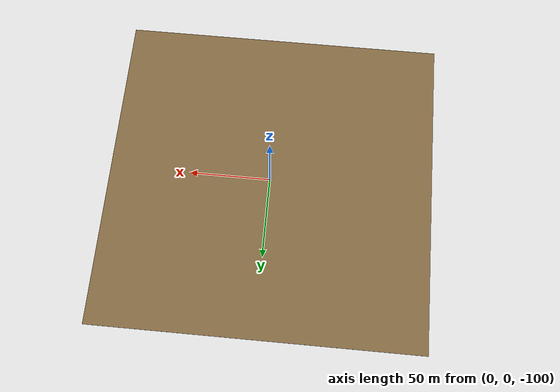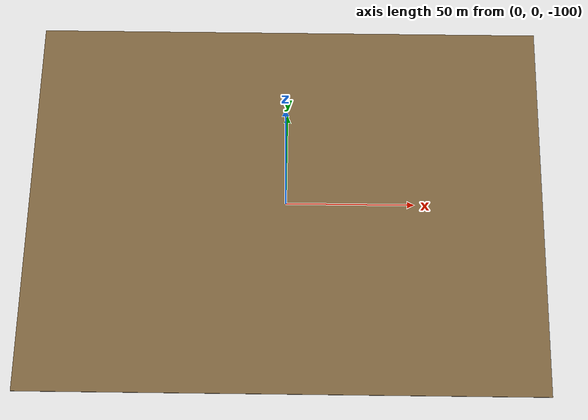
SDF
<?xml version="1.0" ?>
<sdf version="1.9">
  <world name="empty_underwater">

    <physics name="1ms" type="dart">
      <max_step_size>0.001</max_step_size>
      <real_time_factor>1.0</real_time_factor>
    </physics>

    <gravity>0 0 0</gravity>

    <scene>
      <ambient>0.1 0.15 0.3 1.0</ambient>
      <background>0.0 0.05 0.15 1.0</background>
    </scene>

    <light type="directional" name="sun">
      <cast_shadows>true</cast_shadows>
      <pose>0 0 10 0 0 0</pose>
      <diffuse>0.3 0.4 0.5 1</diffuse>
      <specular>0.1 0.1 0.1 1</specular>
      <direction>-0.5 0.1 -0.9</direction>
    </light>

    <!-- Seabed -->
    <model name="seabed">
      <static>true</static>
      <pose>0 0 -100 0 0 0</pose>
      <link name="link">
        <visual name="visual">
          <geometry>
            <box><size>200 200 0.1</size></box>
          </geometry>
          <material>
            <ambient>0.3 0.25 0.15 1</ambient>
            <diffuse>0.5 0.4 0.25 1</diffuse>
          </material>
        </visual>
        <collision name="collision">
          <geometry>
            <box><size>200 200 0.1</size></box>
          </geometry>
        </collision>
      </link>
    </model>

    <!-- ── World Plugins ──────────────────────────────────────────── -->
    <plugin filename="gz-sim-physics-system"
            name="gz::sim::systems::Physics"/>
    <plugin filename="gz-sim-user-commands-system"
            name="gz::sim::systems::UserCommands"/>
    <plugin filename="gz-sim-scene-broadcaster-system"
            name="gz::sim::systems::SceneBroadcaster"/>
    <plugin filename="gz-sim-sensors-system"
            name="gz::sim::systems::Sensors">
      <render_engine>ogre2</render_engine>
    </plugin>
    <plugin filename="gz-sim-imu-system"
            name="gz::sim::systems::Imu"/>
    <plugin filename="gz-sim-buoyancy-system"
            name="gz::sim::systems::Buoyancy">
      <uniform_buoyancy>true</uniform_buoyancy>
      <use_curr_pose>true</use_curr_pose>
      <graded_buoyancy>
        <default_density>1028</default_density>
        <density_change>
          <above_depth>0</above_depth>
          <density>1.225</density>
        </density_change>
      </graded_buoyancy>
    </plugin>

  </world>
</sdf>
